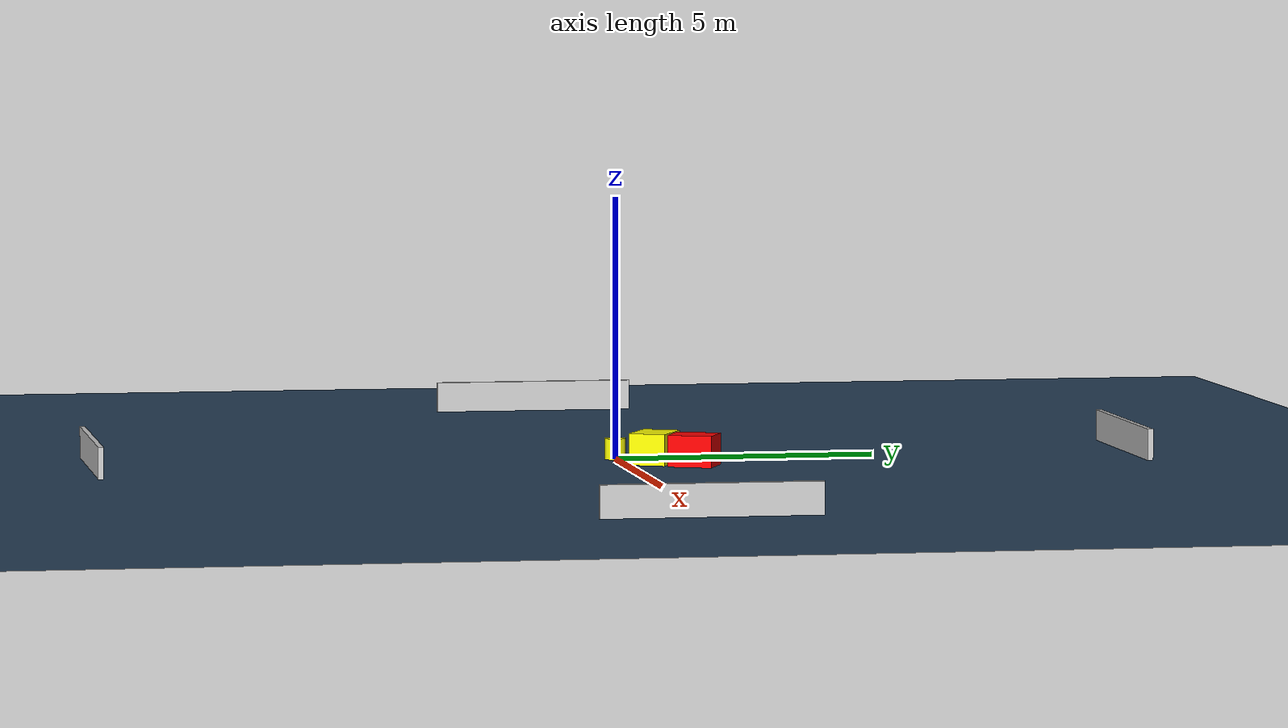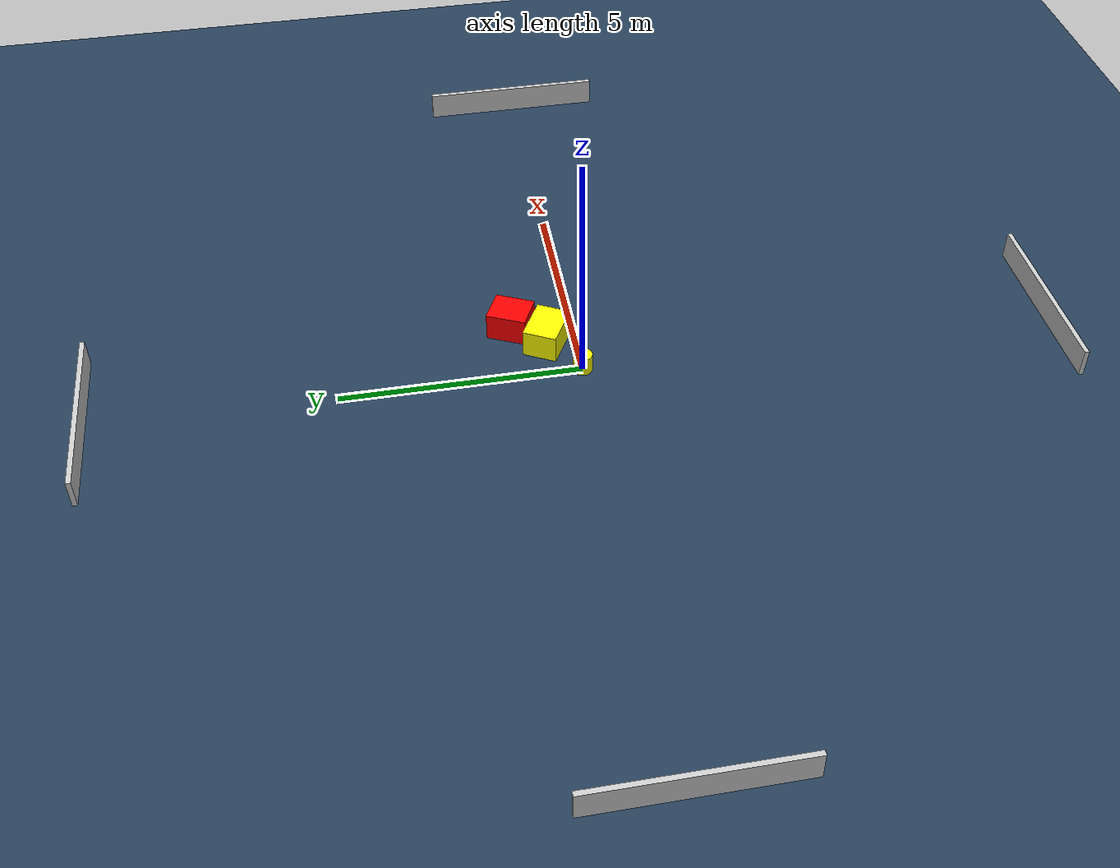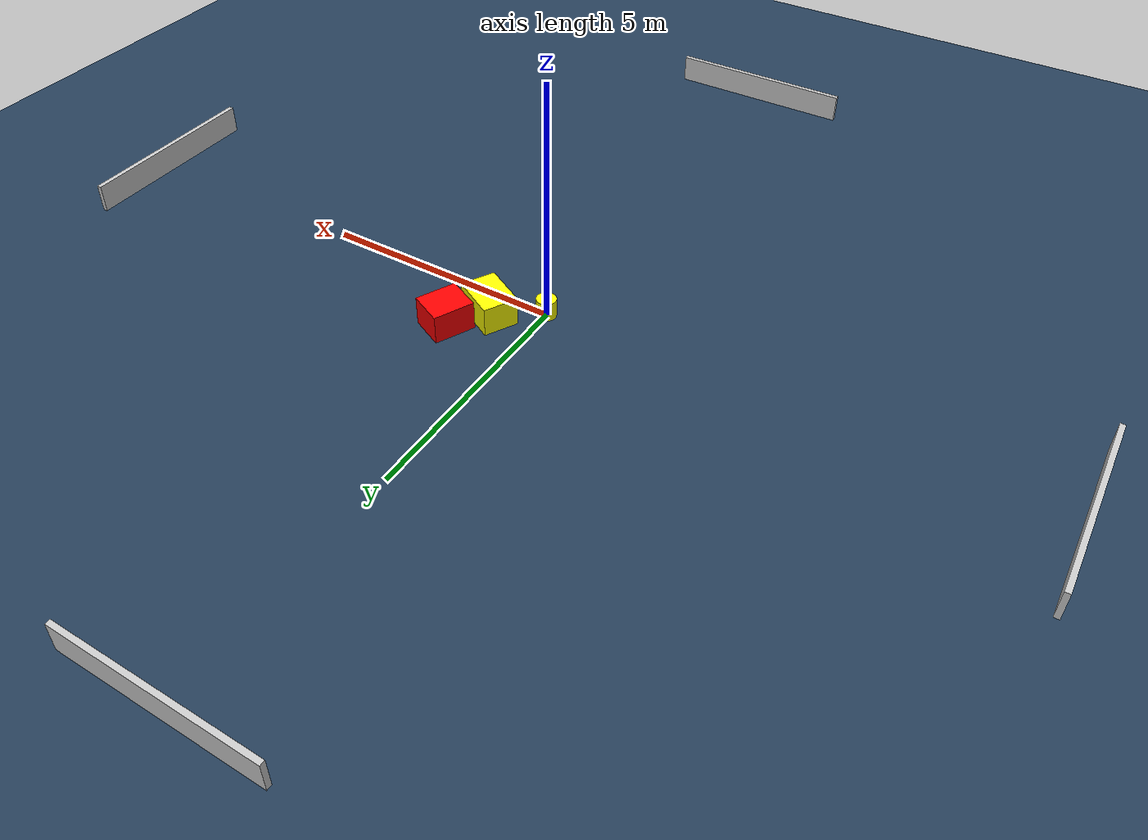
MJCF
<?xml version="1.0" ?>
<mujoco model="generated_environment">
  <option timestep="0.01" integrator="RK4" cone="elliptic"/>
  <default>
    <geom density="1"/>
  </default>
  <asset>
    <texture builtin="gradient" height="3072" name="skybox" rgb1="0.3 0.5 0.7" rgb2="0 0 0" type="skybox" width="512"/>
    <texture builtin="checker" height="300" name="groundplane" rgb1="0.2 0.3 0.4" rgb2="0.1 0.2 0.3" type="2d" width="300"/>
    <material name="groundplane" reflectance="0.2" texrepeat="5 5" texture="groundplane"/>
  </asset>
  <worldbody>
    <light dir="0 0 -1" directional="true" pos="0 0 1.5"/>
    <geom condim="3" friction="0.5 0.005 0.001" material="groundplane" name="floor" pos="0 0 0" size="0 0 0.05" type="plane"/>
    <body name="walls">
      <geom name="wall_1" condim="4" pos="-10.0 0.0 0.3" rgba="0.800000011920929 0.800000011920929 0.800000011920929 1.0" size="0.05 2.0 0.3" type="box"/>
      <geom name="wall_2" condim="4" pos="10.0 0.0 0.3" rgba="0.800000011920929 0.800000011920929 0.800000011920929 1.0" size="0.05 2.0 0.3" type="box"/>
      <geom name="wall_3" condim="4" pos="0.0 -10.0 0.3" rgba="0.800000011920929 0.800000011920929 0.800000011920929 1.0" size="2.0 0.05 0.3" type="box"/>
      <geom name="wall_4" condim="4" pos="0.0 10.0 0.3" rgba="0.800000011920929 0.800000011920929 0.800000011920929 1.0" size="2.0 0.05 0.3" type="box"/>
    </body>
    <body name="robot">
      <joint name="joint_x" type="slide" pos="0 0 0" axis="1 0 0"/>
      <joint name="joint_y" type="slide" pos="0 0 0" axis="0 1 0"/>
      <geom name="robot" type="cylinder" pos="0.0 0.0 0.2" size="0.2 0.2 0.0" mass="5.0" friction="1.0 0.005 0.0001" condim="4" rgba="1.0 1.0 0.0 1.0"/>
    </body>
    <body name="obstacle_1_movable">
      <geom name="obstacle_1_movable" condim="4" pos="0.9095323880017848 0.5946079649842645 0.3" euler="0 0 61.603983520193424" friction="0.0 0.005 0.001" rgba="1.0 1.0 0.0 1.0" size="0.35729590726222105 0.47253113981086536 0.3" type="box" mass="0.1"/>
      <joint type="free"/>
    </body>
    <body name="obstacle_2_static">
      <geom name="obstacle_2_static" condim="4" pos="1.462236814571048 1.266844152134564 0.3" euler="0 0 334.6600733845557" friction="0.0 0.005 0.001" rgba="1.0 0.0 0.0 1.0" size="0.36082150957219994 0.42086914370195505 0.3" type="box"/>
    </body>
  </worldbody>
  <actuator>
    <motor name="actuator_x" joint="joint_x" gear="1" ctrlrange="-1 1"/>
    <motor name="actuator_y" joint="joint_y" gear="1" ctrlrange="-1 1"/>
  </actuator>
</mujoco>
